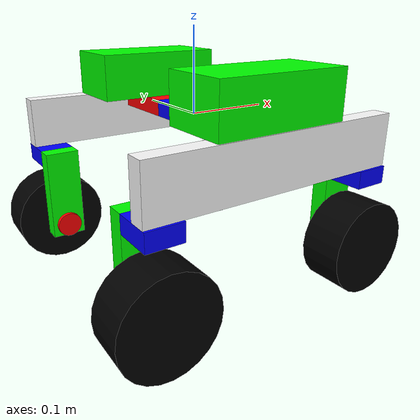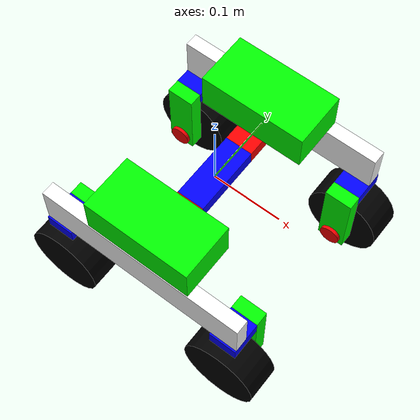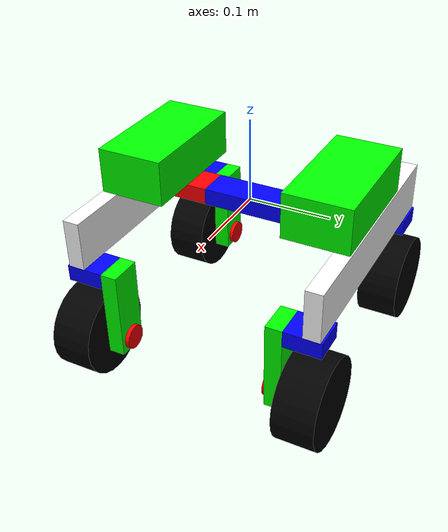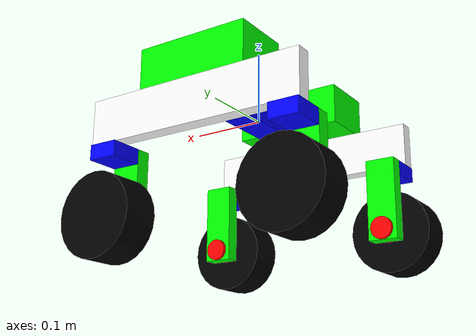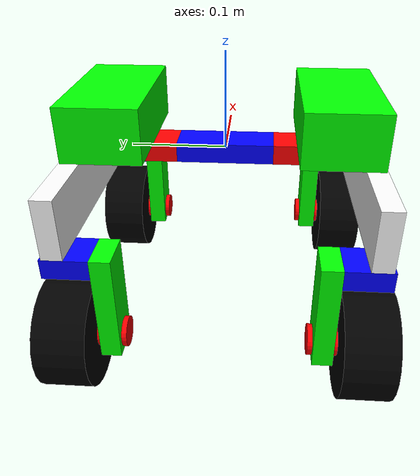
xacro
<?xml version="1.0"?>
<robot xmlns:xacro="http://www.ros.org/wiki/xacro" name="marvin">

  <xacro:include filename="caster_ack.xacro" />
  <xacro:include filename="chassis.xacro" />
  <xacro:include filename="wheel.xacro" />
  <xacro:include filename="inertials.xacro" />
  <xacro:include filename="colours.xacro" />

  <xacro:include filename="marvin_ackermann.gazebo" />

  <!-- Middle front axle test-->
  <link name="front_axle">
    <xacro:default_inertial mass="0.1" />
  </link>
  <joint name="front_axle_joint" type="fixed">
    <origin
      xyz="
       ${shoulder_vertical_x / 2 - caster_horizontal_x / 2}
       0
       ${-1 * (shoulder_vertical_z / 2 + caster_horizontal_z + main_link_z / 2)}
                    " />
    <parent link="base_link" />
    <child link="front_axle" />
  </joint>
  <link name="lead_steer">
    <xacro:default_inertial mass="0.1" />
  </link>
  <joint name="lead_steer_joint" type="revolute">
    <origin
      xyz="
       0
       0
       0
                    " />
    <parent link="front_axle" />
    <child link="lead_steer" />
    <axis xyz="0 0 1" />
    <limit lower="${-wheel_turn}" upper="${wheel_turn}" effort="10" velocity="10" />
  </joint>

  <link name="wheel_lead">
    <xacro:default_inertial mass="0.1" />
  </link>

  <joint name="wheel_lead_axle" type="continuous">
    <origin xyz="0 0 0" rpy="0 0 0"/>
    <parent link="lead_steer" />
    <child link="wheel_lead" />
    <axis xyz="0 1 0"/>
    <limit effort="1000.0" velocity="0.5"/>
  </joint>

  <!-- Middle back axle test-->
  <link name="back_axle">
  </link>
  <joint name="back_axle_joint" type="fixed">
    <origin
      xyz="
       ${-1 * (shoulder_vertical_x / 2 - caster_horizontal_x / 2)}
       0
       ${-1 * (shoulder_vertical_z / 2 + caster_horizontal_z + main_link_z / 2)}
                    " />
    <parent link="base_link" />
    <child link="back_axle" />
    <axis xyz="0 0 1" />
  </joint>

  <xacro:shoulder prefix="right" suffix="front" reflect_y="-1" />
  <xacro:shoulder prefix="left" suffix="front" reflect_y="1" />
  <xacro:caster prefix="right" suffix="front" reflect_x="1" reflect_y="-1" turn="True" />
  <xacro:caster prefix="left" suffix="front" reflect_x="1" reflect_y="1" turn="True" />
  <xacro:caster prefix="right" suffix="back" reflect_x="-1" reflect_y="-1" turn="False" />
  <xacro:caster prefix="left" suffix="back" reflect_x="-1" reflect_y="1" turn="False" />
</robot>

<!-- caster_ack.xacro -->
<robot xmlns:xacro="http://www.ros.org/wiki/xacro">

  <xacro:property name="caster_horizontal_x" value="0.040" />
  <xacro:property name="caster_horizontal_y" value="0.045" />
  <xacro:property name="caster_horizontal_z" value="0.020" />
  <xacro:property name="caster_horizontal_weight" value="0.03834" />

  <xacro:property name="caster_vertical_x" value="0.040" />
  <xacro:property name="caster_vertical_y" value="0.020" />
  <xacro:property name="caster_vertical_z" value="0.110" />
  <xacro:property name="caster_vertical_weight" value="0.09371" />

  <xacro:property name="axle_radius" value="0.015" />
  <xacro:property name="axle_length" value="0.030" />
  <xacro:property name="axle_weight" value="0.160" />

  <xacro:macro name="caster" params="prefix suffix reflect_x reflect_y turn">
    <link name="${prefix}_${suffix}_caster_horizontal">
      <xacro:default_inertial mass="${caster_horizontal_weight}" />
      <visual>
        <origin xyz="0 0.0 0.0" />
        <geometry>
          <box
            size="
                        ${caster_horizontal_x}
                        ${caster_horizontal_y}
                        ${caster_horizontal_z}" />
        </geometry>
        <material name="blue" />
      </visual>
      <collision>
        <origin xyz="0 0.0 0.0" />
        <geometry>
          <box
            size="
                        ${caster_horizontal_x}
                        ${caster_horizontal_y}
                        ${caster_horizontal_z}" />
        </geometry>
        <material name="blue" />
      </collision>
    </link>

    <xacro:if value="${turn == True}">
      <joint name="${prefix}_${suffix}_caster_to_shoulder" type="revolute">
        <origin
          xyz="
           0
           ${reflect_y * (shoulder_vertical_y / 2 + shoulder_horizontal_y / 2 + main_link_y / 2
           + caster_horizontal_y / 2 + caster_vertical_y / 2)}
           0" />
        <parent link="front_axle" />
        <child link="${prefix}_${suffix}_caster_horizontal" />
        <axis xyz="0 0 1" />
        <limit lower="${-wheel_turn}" upper="${wheel_turn}" effort="10" velocity="10" />
      </joint>

      <!-- Transmission for ros_control-->
      <transmission name="${prefix}_steer_tran">
        <type>transmission_interface/SimpleTransmission</type>
        <joint name="${prefix}_front_caster_to_shoulder">
          <hardwareInterface>hardware_interface/EffortJointInterface</hardwareInterface>
        </joint>
        <actuator name="${prefix}_steer_motor">
          <hardwareInterface>hardware_interface/EffortJointInterface</hardwareInterface>
          <mechanicalReduction>1</mechanicalReduction>
        </actuator>
      </transmission>
    </xacro:if>

    <xacro:if value="${turn == False}">
      <joint name="${prefix}_${suffix}_caster_to_shoulder" type="fixed">
        <origin
          xyz="
           0
           ${reflect_y * (shoulder_vertical_y / 2 + shoulder_horizontal_y / 2 + main_link_y / 2
           + caster_horizontal_y / 2 + caster_vertical_y / 2)}
           0
        " />
        <parent link="back_axle" />
        <child link="${prefix}_${suffix}_caster_horizontal" />
        <axis xyz="0 0 1" />
      </joint>
    </xacro:if>

    <link name="${prefix}_${suffix}_caster_vertical">
      <xacro:default_inertial mass="${caster_vertical_weight}" />
      <visual>
        <origin xyz="0.0 0.0 0.0" />
        <geometry>
          <box
            size="
                        ${caster_vertical_x}
                        ${caster_vertical_y}
                        ${caster_vertical_z}" />
        </geometry>
        <material name="green" />
      </visual>
      <collision>
        <origin xyz="0.0 0.0 0.0" />
        <geometry>
          <box
            size="
                        ${caster_vertical_x}
                        ${caster_vertical_y}
                        ${caster_vertical_z}" />
        </geometry>
      </collision>
    </link>

    <joint name="${prefix}_${suffix}_caster_joint" type="fixed">
      <origin
        xyz="
                0
                ${-reflect_y * (caster_horizontal_y/2 + caster_vertical_y/2)}
                ${-1 * (caster_vertical_z/2 - caster_horizontal_z/2) }" />
      <parent link="${prefix}_${suffix}_caster_horizontal" />
      <child link="${prefix}_${suffix}_caster_vertical" />
    </joint>

    <link name="${prefix}_${suffix}_axle">
      <xacro:default_inertial mass="${axle_weight}" />
      <visual>
        <origin rpy="${pi/2} 0.0 0.0" />
        <geometry>
          <cylinder radius="${axle_radius}" length="${axle_length}" />
        </geometry>
        <material name="red" />
      </visual>
      <collision>
        <origin rpy="${pi/2} 0.0 0.0" />
        <geometry>
          <cylinder radius="${axle_radius}" length="${axle_length}" />
        </geometry>
      </collision>
    </link>

    <joint name="${prefix}_${suffix}_axle_to_caster" type="fixed">
      <origin
        xyz="
                0
                0
                ${-1 * (caster_vertical_z/2 - axle_radius)}" />
      <parent link="${prefix}_${suffix}_caster_vertical" />
      <child link="${prefix}_${suffix}_axle" />
    </joint>

    <xacro:wheel prefix="${prefix}" suffix="${suffix}" reflect_y="${reflect_y}" />
  </xacro:macro>
</robot>

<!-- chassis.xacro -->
<robot xmlns:xacro="http://www.ros.org/wiki/xacro">
  <xacro:include filename="inertials.xacro" />

  <!-- Shoulder measurements-->
  <xacro:property name="shoulder_box_x" value="0.155" />
  <xacro:property name="shoulder_box_y" value="0.080" />
  <xacro:property name="shoulder_box_z" value="0.055" />
  <xacro:property name="shoulder_box_weight" value="0.050" />

  <xacro:property name="shoulder_horizontal_x" value="0.040" />
  <xacro:property name="shoulder_horizontal_y" value="0.085" />
  <xacro:property name="shoulder_horizontal_z" value="0.020" />
  <xacro:property name="shoulder_horizontal_weight" value="0.07241" />

  <xacro:property name="shoulder_vertical_x" value="0.305" />
  <xacro:property name="shoulder_vertical_y" value="0.020" />
  <xacro:property name="shoulder_vertical_z" value="0.060" />
  <xacro:property name="shoulder_vertical_weight" value="0.23928" />

  <!-- Center of the robot -->
  <xacro:property name="main_link_x" value="0.040" />
  <xacro:property name="main_link_y" value="0.100" />
  <xacro:property name="main_link_z" value="0.020" />
  <xacro:property name="main_link_weight" value="0.08519" />

  <!-- Base link -->
  <link name="base_link">
    <visual>
      <origin xyz="0.0 0.0 0.0" />
      <geometry>
        <box
          size="
                    ${main_link_x}
                    ${main_link_y}
                    ${main_link_z}" />
      </geometry>
      <material name="blue" />
    </visual>
    <collision>
      <origin xyz="0.0 0.0 0.0" />
      <geometry>
        <box
          size="
                    ${main_link_x}
                    ${main_link_y}
                    ${main_link_z}" />
      </geometry>
    </collision>
  </link>

  <xacro:macro name="shoulder" params="prefix suffix reflect_y">
    <link name="${prefix}_shoulder_horizontal">
      <xacro:default_inertial mass="${shoulder_horizontal_weight}" />
      <visual>
        <origin xyz="0.0 0.0 0.0" />
        <geometry>
          <box
            size="${shoulder_horizontal_x}
                    ${shoulder_horizontal_y}
                    ${shoulder_horizontal_z}" />
        </geometry>
        <material name="red" />
      </visual>
      <collision>
        <origin xyz="0.0 0.0 0.0" />
        <geometry>
          <box
            size="${shoulder_horizontal_x}
                    ${shoulder_horizontal_y}
                    ${shoulder_horizontal_z}" />
        </geometry>
      </collision>
    </link>

    <joint name="${prefix}_shoulder_horizontal_base" type="fixed">
      <origin
        xyz="
            0.0
            ${reflect_y *((shoulder_horizontal_y / 2) + (main_link_y / 2))}
            0.0" />
      <parent link="base_link" />
      <child link="${prefix}_shoulder_horizontal" />
      <axis xyz="0 1 0" />
    </joint>

    <link name="${prefix}_shoulder_box">
      <xacro:default_inertial mass="${shoulder_box_weight}" />
      <visual>
        <origin xyz="0.0 0.0 0.0" />
        <geometry>
          <box
            size="
                        ${shoulder_box_x}
                        ${shoulder_box_y}
                        ${shoulder_box_z}"
          />
        </geometry>
        <material name="green" />
      </visual>
      <collision>
        <origin xyz="0.0 0.0 0.0" />
        <geometry>
          <box
            size="
                        ${shoulder_box_x}
                        ${shoulder_box_y}
                        ${shoulder_box_z}"
          />
        </geometry>
      </collision>
    </link>

    <joint name="${prefix}_shoulder_box_shoulder" type="fixed">
      <origin
        xyz="
            0
            ${reflect_y * (shoulder_horizontal_y / 4)}
            ${(shoulder_horizontal_z / 2) + (shoulder_box_z / 2)}" />
      <parent link="${prefix}_shoulder_horizontal" />
      <child link="${prefix}_shoulder_box" />
    </joint>

    <link name="${prefix}_shoulder_vertical">
      <xacro:default_inertial mass="${shoulder_vertical_weight}" />
      <visual>
        <origin xyz="0 0.0 0.0" />
        <geometry>
          <box
            size="
                    ${shoulder_vertical_x}
                    ${shoulder_vertical_y}
                    ${shoulder_vertical_z}" />
        </geometry>
        <material name="white" />
      </visual>
      <collision>
        <origin xyz="0 0.0 0.0" />
        <geometry>
          <box
            size="
                    ${shoulder_vertical_x}
                    ${shoulder_vertical_y}
                    ${shoulder_vertical_z}" />
        </geometry>
      </collision>
    </link>

    <joint name="${prefix}_shoulder_joint" type="fixed">
      <origin
        xyz="
            0
            ${reflect_y * ((shoulder_horizontal_y / 2) + (shoulder_vertical_y / 2))}
            ${-1 * (shoulder_vertical_z/2 - shoulder_horizontal_z/2)}" />
      <parent link="${prefix}_shoulder_horizontal" />
      <child link="${prefix}_shoulder_vertical" />
    </joint>
  </xacro:macro>
</robot>

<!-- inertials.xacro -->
<robot xmlns:xacro="http://www.ros.org/wiki/xacro">
    <!-- Inertial macros -->
    <xacro:macro name="default_inertial" params="mass">
        <inertial>
            <origin xyz="0.0 0.0 0.0"/>
            <mass value="${mass}" />
            <inertia ixx="0.01" ixy="0.0" ixz="0.0" iyy="0.01" iyz="0.0" izz="0.01" />
        </inertial>
    </xacro:macro>
</robot>

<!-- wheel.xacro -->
<robot xmlns:xacro="http://www.ros.org/wiki/xacro">

  <xacro:include filename="inertials.xacro" />

  <!-- Wheel measurements -->
  <xacro:property name="wheel_radius" value="0.055" />
  <xacro:property name="wheel_length" value="0.050" />
  <xacro:property name="wheel_weight" value="0.340" />
  <xacro:property name="wheel_turn" value="3.5" />

  <xacro:macro name="wheel" params="prefix suffix reflect_y">
    <link name="${prefix}_${suffix}_wheel_link">
      <xacro:default_inertial mass="${wheel_weight}" />
      <visual>
        <origin rpy="${pi/2} 0.0 0.0" />
        <geometry>
          <cylinder radius="${wheel_radius}" length="${wheel_length}" />
        </geometry>
        <material name="black" />
      </visual>
      <collision>
        <origin rpy="${pi/2} 0.0 0.0" />
        <geometry>
          <cylinder radius="${wheel_radius}" length="${wheel_length}" />
        </geometry>
      </collision>
    </link>

    <joint name="${prefix}_${suffix}_wheel_joint" type="continuous">
      <origin xyz="0 ${reflect_y * (wheel_length/2 + axle_length/2 - 0.001)} 0" />
      <parent link="${prefix}_${suffix}_axle" />
      <child link="${prefix}_${suffix}_wheel_link" />
      <axis xyz="0 1 0" />
    </joint>

    <gazebo reference="${prefix}_${suffix}_wheel_link">
      <mu1 value="1.0" />
      <mu2 value="1.0" />
      <kp value="10000.0" />
      <kd value="100.0" />
      <material>Gazebo/Grey</material>
    </gazebo>

    <transmission name="${prefix}_${suffix}_tran">
      <type>transmission_interface/SimpleTransmission</type>
      <joint name="${prefix}_${suffix}_wheel_joint">
        <hardwareInterface>hardware_interface/EffortJointInterface</hardwareInterface>
      </joint>
      <actuator name="${prefix}_${suffix}_motor">
        <hardwareInterface>hardware_interface/EffortJointInterface</hardwareInterface>
        <mechanicalReduction>1</mechanicalReduction>
      </actuator>
    </transmission>
  </xacro:macro>
</robot>

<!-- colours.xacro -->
<robot xmlns:xacro="http://www.ros.org/wiki/xacro">
    <!-- Colours -->
    <material name="green">
        <color rgba="0.0 1.0 0.0 1"/>
    </material>

    <material name="white">
        <color rgba="1 1 1 1"/>
    </material>

    <material name="black">
        <color rgba="0 0 0 1"/>
    </material>

    <material name="red">
        <color rgba="1.0 0.0 0.0 1"/>
    </material>

    <material name="blue">
        <color rgba="0.0 0.0 1 1.0"/>
    </material>
</robot>
